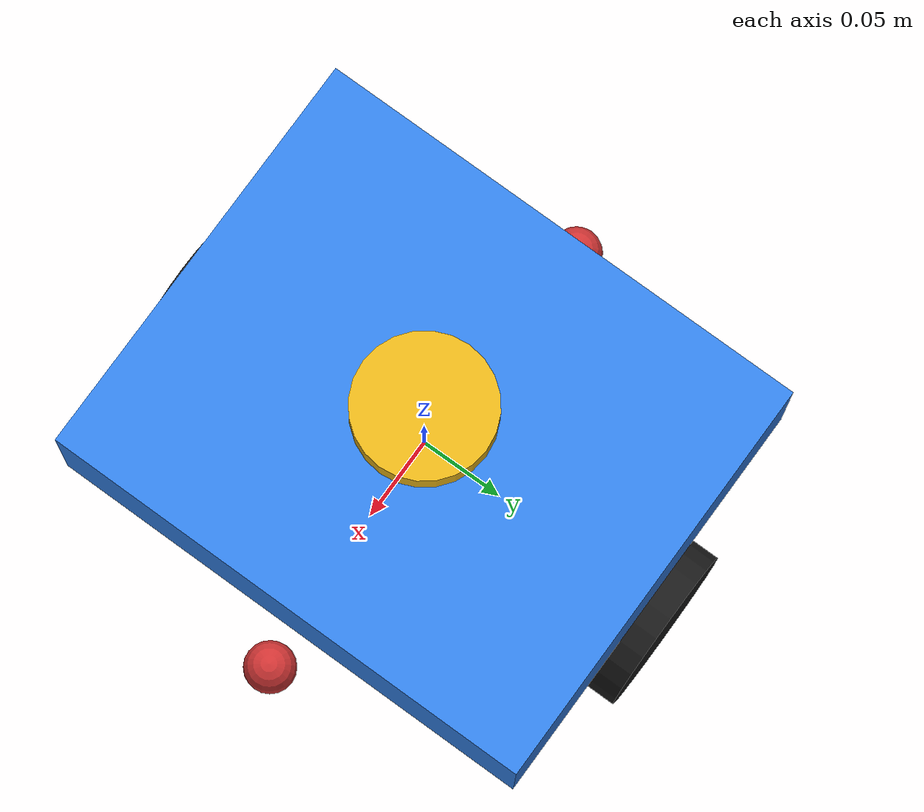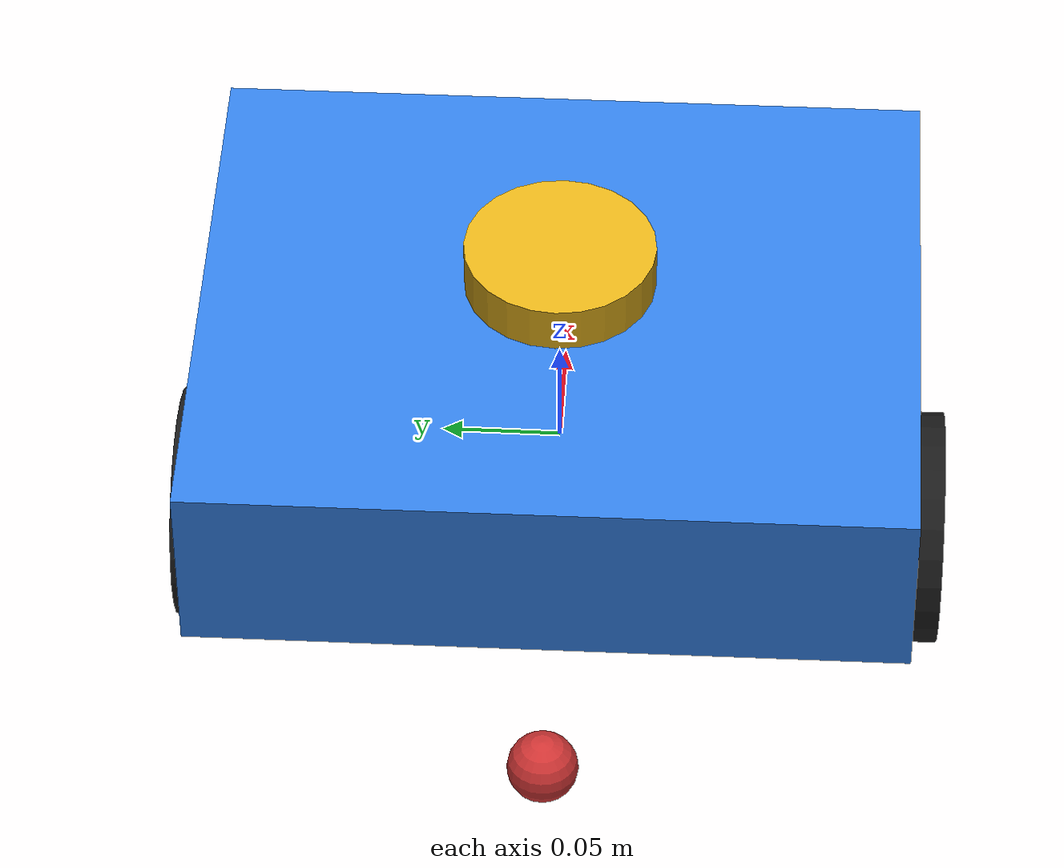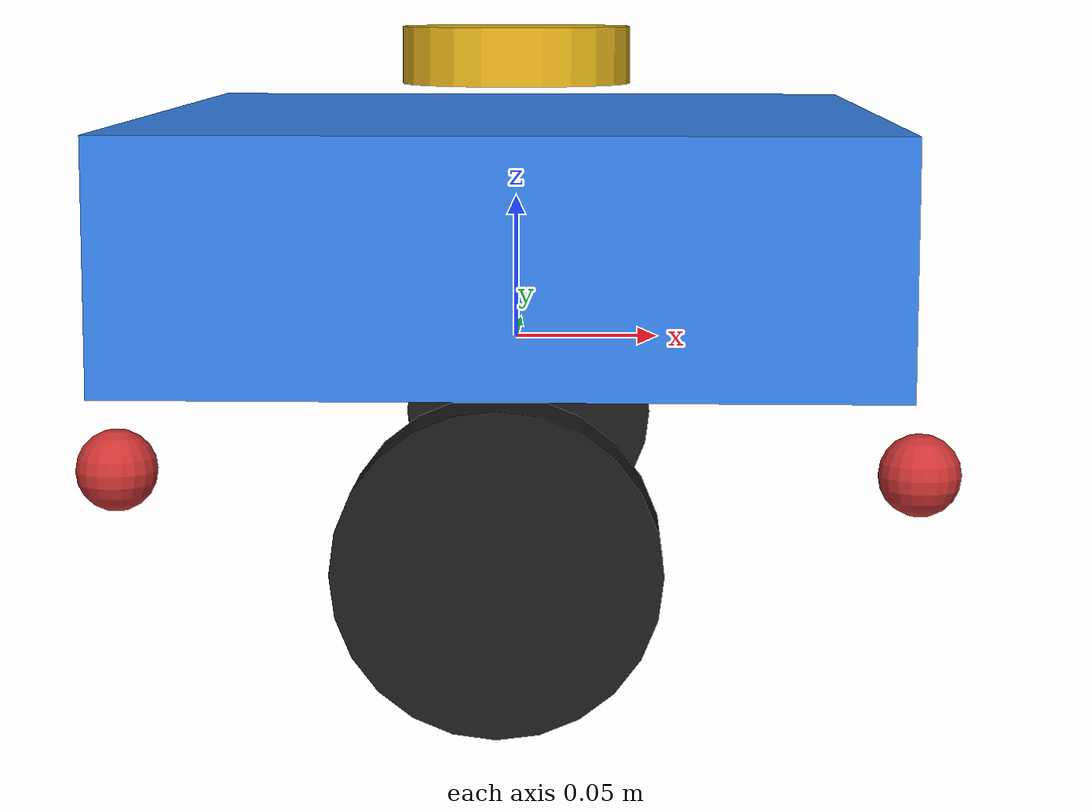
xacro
<?xml version="1.0"?>

  <!-- 1. 建模参数    -->
<robot xmlns:xacro="http://www.ros.org/wiki/xacro" name="diff_robot">

  <xacro:property name="base_width"   value="0.30" />   <!-- 轮距 L (m)
-->
  <xacro:property name="wheel_radius" value="0.05" />   <!-- 轮半径 r (m)
-->
  <xacro:property name="base_length"  value="0.25" />   <!-- 底盘长 (m)                    -->
  <xacro:property name="base_height"  value="0.08" />   <!-- 底盘高 (m)                    -->
  <xacro:property name="wheel_width"  value="0.03" />   <!-- 轮宽 (m)                      -->
  <xacro:property name="caster_radius" value="0.015" /> <!-- 万向轮半径 (m)                -->

  <!-- 2. 材质定义（仅用于可视化）                      -->
  <material name="base_color">
    <color rgba="0.2 0.5 0.9 1.0"/>   <!-- 亮蓝色底盘 -->
  </material>
  <material name="wheel_color">
    <color rgba="0.1 0.1 0.1 1.0"/>   <!-- 黑色车轮 -->
  </material>
  <material name="caster_color">
    <color rgba="0.8 0.2 0.2 1.0"/>   <!-- 红色万向轮 -->
  </material>
  <material name="sensor_color">
    <color rgba="0.9 0.7 0.1 1.0"/>   <!-- 金色传感器 -->
  </material>

  <!-- 3. base_link                                              -->
  <!--    inertial parameter: mass = 1.0kg, uniform cuboid       -->
<link name="base_link">
  <visual>
    <geometry>
      <box size="${base_length} ${base_width} ${base_height}"/>
    </geometry>
    <origin xyz="0 0 ${base_height/2}" rpy="0 0 0"/>
    <material name="base_color"/>
  </visual>
  <collision>
    <geometry>
      <box size="${base_length} ${base_width} ${base_height}"/>
    </geometry>
    <origin xyz="0 0 ${base_height/2}" rpy="0 0 0"/>
  </collision>
  <inertial>
    <mass value="1.0"/>
    <inertia ixx="0.01" ixy="0.0" ixz="0.0"
             iyy="0.01" iyz="0.0"
             izz="0.02"/>
  </inertial>
</link>

  <!-- 4. left_wheel_link                                         -->
  <!--    车轮是圆柱体，绕 Y 轴旋转                                  -->
  <link name="left_wheel_link">
    <visual>
      <geometry>
        <cylinder radius="${wheel_radius}" length="${wheel_width}"/>
      </geometry>
      <origin xyz="0 0 0" rpy="${pi/2} 0 0"/>
      <material name="wheel_color"/>
    </visual>
    <collision>
      <geometry>
        <cylinder radius="${wheel_radius}" length="${wheel_width}"/>
      </geometry>
      <origin xyz="0 0 0" rpy="${pi/2} 0 0"/>
    </collision>
    <inertial>
      <mass value="0.05"/>
      <inertia ixx="0.0001" ixy="0.0" ixz="0.0"
               iyy="0.0001" iyz="0.0"
               izz="0.0001"/>
    </inertial>
  </link>
 <!--加摩擦力-->
  <gazebo reference="left_wheel_link">
  <mu1>1.0</mu1>
  <mu2>1.0</mu2>
  <material>Gazebo/Black</material>
</gazebo>

  <!-- 左轮关节: 连续旋转 (continuous)，绕 Y 轴旋转                   -->
  <!-- 位置: 底盘左侧 (x=0, y=+base_width/2, z=-wheel_radius)       -->
  <!--        z 向下偏移使得车轮底部刚好接触地面                     -->
  <joint name="left_wheel_joint" type="continuous">
    <parent link="base_link"/>
    <child link="left_wheel_link"/>
    <origin xyz="0 ${base_width/2} ${-wheel_radius}" rpy="0 0 0"/>
    <axis xyz="0 1 0"/>   <!-- 绕 Y 轴旋转 -->
    <limit effort="50" velocity="20"/>
  </joint>

  <!-- 5. 右轮 (right_wheel_link) - 完全对称                         -->
  <link name="right_wheel_link">
    <visual>
      <geometry>
        <cylinder radius="${wheel_radius}" length="${wheel_width}"/>
      </geometry>
      <origin xyz="0 0 0" rpy="${pi/2} 0 0"/>
      <material name="wheel_color"/>
    </visual>
    <collision>
      <geometry>
        <cylinder radius="${wheel_radius}" length="${wheel_width}"/>
      </geometry>
      <origin xyz="0 0 0" rpy="${pi/2} 0 0"/>
    </collision>
    <inertial>
      <mass value="0.05"/>
      <inertia ixx="0.0001" ixy="0.0" ixz="0.0"
               iyy="0.0001" iyz="0.0"
               izz="0.0001"/>
    </inertial>
  </link>

   <!--加摩擦力-->
<gazebo reference="right_wheel_link">
  <mu1>1.0</mu1>
  <mu2>1.0</mu2>
  <material>Gazebo/Black</material>
</gazebo>

  <!-- 右轮关节: 位置在底盘右侧 (x=0, y=-base_width/2, z=-wheel_radius) -->
  <joint name="right_wheel_joint" type="continuous">
    <parent link="base_link"/>
    <child link="right_wheel_link"/>
    <origin xyz="0 ${-base_width/2} ${-wheel_radius}" rpy="0 0 0"/>
    <axis xyz="0 1 0"/>
    <limit effort="50" velocity="20"/>
  </joint>

  <!-- 6. 万向轮 (前后各一个，支撑平衡，无动力)                    -->
  <!--    使用固定关节 (fixed)，因为不需要主动旋转建模               -->
  <link name="front_caster_link">
    <visual>
      <geometry>
        <sphere radius="${caster_radius}"/>
      </geometry>
      <origin xyz="0 0 0" rpy="0 0 0"/>
      <material name="caster_color"/>
    </visual>
    <collision>
      <geometry>
        <sphere radius="${caster_radius}"/>
      </geometry>
      <origin xyz="0 0 0" rpy="0 0 0"/>
    </collision>
    <inertial>
      <mass value="0.02"/>
      <inertia ixx="0.00001" ixy="0.0" ixz="0.0"
               iyy="0.00001" iyz="0.0"
               izz="0.00001"/>
    </inertial>
  </link>

  <joint name="front_caster_joint" type="fixed">
    <parent link="base_link"/>
    <child link="front_caster_link"/>
    <origin xyz="${base_length/2 + 0.02} 0 ${-wheel_radius}" rpy="0 0 0"/>
  </joint>

  <link name="rear_caster_link">
    <visual>
      <geometry>
        <sphere radius="${caster_radius}"/>
      </geometry>
      <origin xyz="0 0 0" rpy="0 0 0"/>
      <material name="caster_color"/>
    </visual>
    <collision>
      <geometry>
        <sphere radius="${caster_radius}"/>
      </geometry>
      <origin xyz="0 0 0" rpy="0 0 0"/>
    </collision>
    <inertial>
      <mass value="0.02"/>
      <inertia ixx="0.00001" ixy="0.0" ixz="0.0"
               iyy="0.00001" iyz="0.0"
               izz="0.00001"/>
    </inertial>
  </link>

  <joint name="rear_caster_joint" type="fixed">
    <parent link="base_link"/>
    <child link="rear_caster_link"/>
    <origin xyz="${-base_length/2 - 0.02} 0 ${-wheel_radius}" rpy="0 0 0"/>
  </joint>

  <!-- 7. 激光雷达 (laser_link) - 安装在底盘顶部                    -->
  <link name="laser_link">
    <visual>
      <geometry>
        <cylinder radius="0.04" length="0.02"/>
      </geometry>
      <origin xyz="0 0 0" rpy="0 0 0"/>
      <material name="sensor_color"/>
    </visual>
    <collision>
      <geometry>
        <cylinder radius="0.04" length="0.12"/>
      </geometry>
      <origin xyz="0 0 0" rpy="0 0 0"/>
    </collision>
    <inertial>
      <mass value="0.03"/>
      <inertia ixx="0.00001" ixy="0.0" ixz="0.0"
               iyy="0.00001" iyz="0.0"
               izz="0.00001"/>
    </inertial>
  </link>
<gazebo reference="laser_joint">
  <preserveFixedJoint>true</preserveFixedJoint>
</gazebo>

  <joint name="laser_joint" type="fixed">
    <parent link="base_link"/>
    <child link="laser_link"/>
    <origin xyz="0 0 ${base_height + 0.02}" rpy="0 0 0"/>
  </joint>

  <!-- 8. IMU (imu_link) - 惯性测量单元                             -->
  <link name="imu_link">
    <visual>
      <geometry>
        <box size="0.03 0.03 0.02"/>
      </geometry>
      <origin xyz="0 0 0" rpy="0 0 0"/>
      <material name="sensor_color"/>
    </visual>
    <collision>
      <geometry>
        <box size="0.03 0.03 0.02"/>
      </geometry>
      <origin xyz="0 0 0" rpy="0 0 0"/>
    </collision>
    <inertial>
      <mass value="0.01"/>
      <inertia ixx="0.000001" ixy="0.0" ixz="0.0"
               iyy="0.000001" iyz="0.0"
               izz="0.000001"/>
    </inertial>
  </link>

  <joint name="imu_joint" type="fixed">
    <parent link="base_link"/>
    <child link="imu_link"/>
    <origin xyz="0 0 ${base_height/2}" rpy="0 0 0"/>
  </joint>
<gazebo reference="imu_joint">
  <preserveFixedJoint>true</preserveFixedJoint>
</gazebo>
  <!-- 9. Gazebo 插件                                            -->
  <!--    - 差速驱动插件：订阅 /cmd_vel，控制车轮转动，发布里程计    -->
  <!--    - 激光雷达插件：发布 /scan 话题                           -->
  <!--    - IMU 插件：发布 /imu/data 话题                          -->

  <!-- 9-a: Gazebo 差速驱动插件 -->
  <!--
    这个插件做三件事:
    1. 订阅 /cmd_vel 话题，接收线速度和角速度指令
    2. 根据轮距 L 和轮半径 r 将 v/ω 转换为左右轮速度
    3. 驱动左右轮转动，并发布 /odom 里程计话题
  -->
<gazebo>
<plugin name="gz::sim::systems::DiffDrive" filename="libgz-sim-diff-drive-system.so">
    <left_joint>left_wheel_joint</left_joint>
    <right_joint>right_wheel_joint</right_joint>
    <wheel_separation>${base_width}</wheel_separation>
    <wheel_diameter>${2 * wheel_radius}</wheel_diameter>
    <max_wheel_torque>50</max_wheel_torque>
    <max_wheel_acceleration>5.0</max_wheel_acceleration>
    <topic>cmd_vel</topic>
    <odom_topic>odom</odom_topic>
    <odom_frame>odom</odom_frame>
    <robot_base_frame>base_link</robot_base_frame>
    <publish_odom>true</publish_odom>
    <publish_odom_tf>true</publish_odom_tf>
  </plugin>
</gazebo>
<!-- 反馈轮子角度给/joint_states -->
<gazebo>
  <plugin filename="libgz-sim-joint-state-publisher-system.so"
          name="gz::sim::systems::JointStatePublisher">
    <joint_name>left_wheel_joint</joint_name>
    <joint_name>right_wheel_joint</joint_name>
  </plugin>
</gazebo>
<!-- 9-b: Gazebo 激光雷达插件 -->
<gazebo reference="laser_link">
  <sensor type="gpu_lidar" name="laser">
    <pose>0 0 0 0 0 0</pose>
    <visualize>true</visualize>
    <update_rate>10</update_rate>
    <topic>scan</topic>
    <gz_frame_id>laser_link</gz_frame_id>
    <lidar>
      <scan>
        <horizontal>
         <samples>360</samples>
         <resolution>1</resolution>
         <min_angle>-3.14</min_angle>
        <max_angle>3.14</max_angle>
       </horizontal>
       <vertical>
         <samples>1</samples>
         <resolution>1</resolution>
         <min_angle>0</min_angle>
         <max_angle>0</max_angle>
       </vertical>
  </scan>
  <range>
    <min>0.1</min>
    <max>10.0</max>
    <resolution>0.01</resolution>
  </range>
  <noise>
    <type>gaussian</type>
    <mean>0.0</mean>
    <stddev>0.02</stddev>
  </noise>
</lidar>
  </sensor>
</gazebo>

  <!-- 9-c: Gazebo IMU 插件 -->
<gazebo reference="imu_link">
  <sensor type="imu" name="imu_sensor">
  <pose>0 0 0 0 0 0</pose>
  <visualize>false</visualize>
  <update_rate>50</update_rate>
  <topic>imu/data</topic>
  <gz_frame_id>imu_link</gz_frame_id>
  <imu>
    <angular_velocity>
      <x><noise type="gaussian"><mean>0.0</mean><stddev>0.01</stddev></noise></x>
      <y><noise type="gaussian"><mean>0.0</mean><stddev>0.01</stddev></noise></y>
      <z><noise type="gaussian"><mean>0.0</mean><stddev>0.01</stddev></noise></z>
    </angular_velocity>
    <linear_acceleration>
      <x><noise type="gaussian"><mean>0.0</mean><stddev>0.02</stddev></noise></x>
      <y><noise type="gaussian"><mean>0.0</mean><stddev>0.02</stddev></noise></y>
      <z><noise type="gaussian"><mean>0.0</mean><stddev>0.02</stddev></noise></z>
    </linear_acceleration>
  </imu>
</sensor>
</gazebo>
</robot>
<!-- ========== 文件结束 ========== -->
